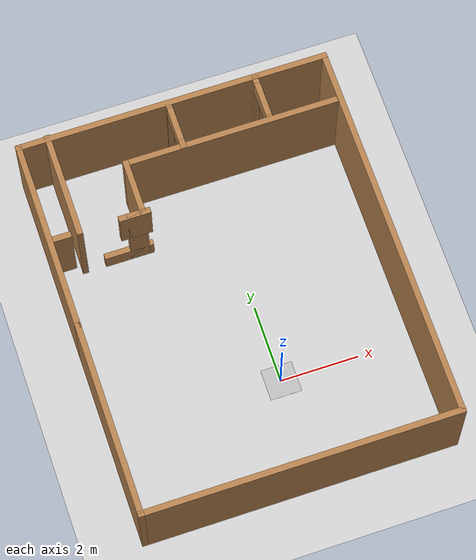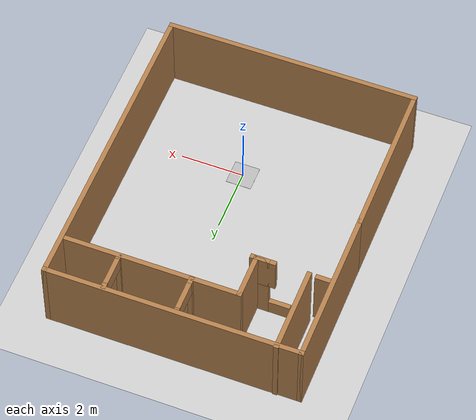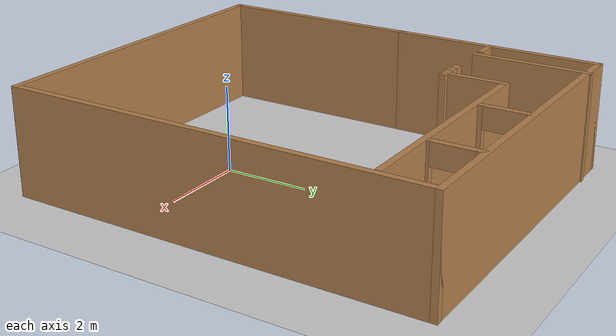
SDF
<sdf version="1.7">
 <world name="default">
  <light name="sun" type="directional">
   <pose>0 0 10 0 -0 0</pose>
   <diffuse>0.8 0.8 0.8 1</diffuse>
   <specular>0.2 0.2 0.2 1</specular>
   <attenuation>
    <range>1000</range>
    <constant>0.9</constant>
    <linear>0.01</linear>
    <quadratic>0.001</quadratic>
   </attenuation>
   <direction>-0.5 0.1 -0.9</direction>
   <spot><inner_angle>0</inner_angle><outer_angle>0</outer_angle><falloff>0</falloff></spot>
  </light>
  <model name="ground_plane">
   <static>1</static>
   <link name="link">
    <collision name="collision">
     <geometry><plane><normal>0 0 1</normal><size>100 100</size></plane></geometry>
     <surface>
      <contact><collide_bitmask>65535</collide_bitmask></contact>
      <friction><ode><mu>100</mu><mu2>50</mu2></ode></friction>
     </surface>
    </collision>
    <visual name="visual">
     <cast_shadows>0</cast_shadows>
     <geometry><plane><normal>0 0 1</normal><size>100 100</size></plane></geometry>
     <material>
      <script><uri>file://media/materials/scripts/gazebo.material</uri><name>Gazebo/Grey</name></script>
     </material>
     <receive_shadows>1</receive_shadows>
     <render_order>0</render_order>
    </visual>
   </link>
  </model>
  <gravity>0 0 -9.8</gravity>
  <magnetic_field>6e-06 2.3e-05 -4.2e-05</magnetic_field>
  <atmosphere type="adiabatic"/>
  <physics type="ode">
   <max_step_size>0.001</max_step_size>
   <real_time_factor>1</real_time_factor>
   <real_time_update_rate>1000</real_time_update_rate>
  </physics>
  <scene>
   <ambient>0.4 0.4 0.4 1</ambient>
   <background>0.7 0.7 0.7 1</background>
   <shadows>1</shadows>
   <fog><type>none</type></fog>
  </scene>
  <spherical_coordinates>
   <surface_model>EARTH_WGS84</surface_model>
   <latitude_deg>0</latitude_deg>
   <longitude_deg>0</longitude_deg>
   <elevation>0</elevation>
   <heading_deg>0</heading_deg>
  </spherical_coordinates>
  <model name="toudi2">
   <pose>-0.485 2.03479 0 0 -0 0</pose>
   <link name="Wall_1">
    <collision name="Wall_1_Collision">
     <geometry><box><size>8 0.15 2.5</size></box></geometry>
     <pose>0 0 1.25 0 -0 0</pose>
    </collision>
    <visual name="Wall_1_Visual">
     <pose>0 0 1.25 0 -0 0</pose>
     <geometry><box><size>8 0.15 2.5</size></box></geometry>
     <material>
      <script><uri>file://media/materials/scripts/gazebo.material</uri><name>Gazebo/Wood</name></script>
      <ambient>1 1 1 1</ambient>
     </material>
     <receive_shadows>1</receive_shadows>
     <render_order>1</render_order>
     <meta><layer>0</layer></meta>
    </visual>
    <pose>-0 -4.86479 0 0 -0 3.14159</pose>
   </link>
   <link name="Wall_11">
    <collision name="Wall_11_Collision">
     <geometry><box><size>9.85 0.15 2.5</size></box></geometry>
     <pose>0 0 1.25 0 -0 0</pose>
    </collision>
    <visual name="Wall_11_Visual">
     <pose>0 0 1.25 0 -0 0</pose>
     <geometry><box><size>9.85 0.15 2.5</size></box></geometry>
     <material>
      <script><uri>file://media/materials/scripts/gazebo.material</uri><name>Gazebo/Wood</name></script>
      <ambient>1 1 1 1</ambient>
     </material>
     <receive_shadows>1</receive_shadows>
     <render_order>1</render_order>
     <meta><layer>0</layer></meta>
    </visual>
    <pose>3.925 -0.01479 0 0 -0 1.5708</pose>
   </link>
   <link name="Wall_13">
    <collision name="Wall_13_Collision">
     <geometry><box><size>5.5 0.15 2.5</size></box></geometry>
     <pose>0 0 1.25 0 -0 0</pose>
    </collision>
    <visual name="Wall_13_Visual">
     <pose>0 0 1.25 0 -0 0</pose>
     <geometry><box><size>5.5 0.15 2.5</size></box></geometry>
     <material>
      <script><uri>file://media/materials/scripts/gazebo.material</uri><name>Gazebo/Wood</name></script>
      <ambient>1 1 1 1</ambient>
     </material>
     <receive_shadows>1</receive_shadows>
     <render_order>1</render_order>
     <meta><layer>0</layer></meta>
    </visual>
    <pose>1.09114 3.61479 0 0 -0 3.14159</pose>
   </link>
   <link name="Wall_14">
    <collision name="Wall_14_Collision">
     <geometry><box><size>1.5 0.15 2.5</size></box></geometry>
     <pose>0 0 1.25 0 -0 0</pose>
    </collision>
    <visual name="Wall_14_Visual">
     <pose>0 0 1.25 0 -0 0</pose>
     <geometry><box><size>1.5 0.15 2.5</size></box></geometry>
     <material>
      <script><uri>file://media/materials/scripts/gazebo.material</uri><name>Gazebo/Wood</name></script>
      <ambient>1 1 1 1</ambient>
     </material>
     <receive_shadows>1</receive_shadows>
     <render_order>1</render_order>
     <meta><layer>0</layer></meta>
    </visual>
    <pose>-1.58386 2.93979 0 0 -0 -1.5708</pose>
   </link>
   <link name="Wall_15">
    <pose>-2.38386 2.26479 0 0 -0 3.14159</pose>
    <visual name="Wall_15_Visual_0">
     <pose>-0.631873 0 1.25 0 -0 0</pose>
     <geometry><box><size>0.486255 0.15 2.5</size></box></geometry>
     <material>
      <script><uri>file://media/materials/scripts/gazebo.material</uri><name>Gazebo/Wood</name></script>
      <ambient>1 1 1 1</ambient>
     </material>
     <receive_shadows>1</receive_shadows>
     <render_order>1</render_order>
     <meta><layer>0</layer></meta>
    </visual>
    <collision name="Wall_15_Collision_0">
     <geometry><box><size>0.486255 0.15 2.5</size></box></geometry>
     <pose>-0.631873 0 1.25 0 -0 0</pose>
    </collision>
    <visual name="Wall_15_Visual_1">
     <pose>-0.356873 0 0.25 0 -0 0</pose>
     <geometry><box><size>1.26374 0.15 0.5</size></box></geometry>
     <material>
      <script><uri>file://media/materials/scripts/gazebo.material</uri><name>Gazebo/Wood</name></script>
      <ambient>1 1 1 1</ambient>
     </material>
     <receive_shadows>1</receive_shadows>
     <render_order>1</render_order>
     <meta><layer>0</layer></meta>
    </visual>
    <collision name="Wall_15_Collision_1">
     <geometry><box><size>1.26374 0.15 0.5</size></box></geometry>
     <pose>-0.356873 0 0.25 0 -0 0</pose>
    </collision>
    <visual name="Wall_15_Visual_2">
     <pose>1.234 0 1.5 0 -0 0</pose>
     <geometry><box><size>0.463745 0.15 2</size></box></geometry>
     <material>
      <script><uri>file://media/materials/scripts/gazebo.material</uri><name>Gazebo/Wood</name></script>
      <ambient>1 1 1 1</ambient>
     </material>
     <receive_shadows>1</receive_shadows>
     <render_order>1</render_order>
     <meta><layer>0</layer></meta>
    </visual>
    <collision name="Wall_15_Collision_2">
     <geometry><box><size>0.463745 0.15 2</size></box></geometry>
     <pose>1.234 0 1.5 0 -0 0</pose>
    </collision>
    <visual name="Wall_15_Visual_3">
     <pose>-0.588745 0 1.9 0 -0 0</pose>
     <geometry><box><size>0.8 0.15 1.2</size></box></geometry>
     <material>
      <script><uri>file://media/materials/scripts/gazebo.material</uri><name>Gazebo/Wood</name></script>
      <ambient>1 1 1 1</ambient>
     </material>
     <receive_shadows>1</receive_shadows>
     <render_order>1</render_order>
     <meta><layer>0</layer></meta>
    </visual>
    <collision name="Wall_15_Collision_3">
     <geometry><box><size>0.8 0.15 1.2</size></box></geometry>
     <pose>-0.588745 0 1.9 0 -0 0</pose>
    </collision>
   </link>
   <link name="Wall_16">
    <collision name="Wall_16_Collision">
     <geometry><box><size>2.75 0.15 2.5</size></box></geometry>
     <pose>0 0 1.25 0 -0 0</pose>
    </collision>
    <visual name="Wall_16_Visual">
     <pose>0 0 1.25 0 -0 0</pose>
     <geometry><box><size>2.75 0.15 2.5</size></box></geometry>
     <material>
      <script><uri>file://media/materials/scripts/gazebo.material</uri><name>Gazebo/Wood</name></script>
      <ambient>1 1 1 1</ambient>
     </material>
     <receive_shadows>1</receive_shadows>
     <render_order>1</render_order>
     <meta><layer>0</layer></meta>
    </visual>
    <pose>-3.18386 3.56479 0 0 -0 1.5708</pose>
   </link>
   <link name="Wall_20">
    <pose>-0.120415 4.18727 0 0 -0 1.5708</pose>
    <visual name="Wall_20_Visual_0">
     <pose>-0.508309 0 1.25 0 -0 0</pose>
     <geometry><box><size>0.233383 0.15 2.5</size></box></geometry>
     <material>
      <script><uri>file://media/materials/scripts/gazebo.material</uri><name>Gazebo/Wood</name></script>
      <ambient>1 1 1 1</ambient>
     </material>
     <receive_shadows>1</receive_shadows>
     <render_order>1</render_order>
     <meta><layer>0</layer></meta>
    </visual>
    <collision name="Wall_20_Collision_0">
     <geometry><box><size>0.233383 0.15 2.5</size></box></geometry>
     <pose>-0.508309 0 1.25 0 -0 0</pose>
    </collision>
    <visual name="Wall_20_Visual_1">
     <pose>0.566691 0 1.25 0 -0 0</pose>
     <geometry><box><size>0.116617 0.15 2.5</size></box></geometry>
     <material>
      <script><uri>file://media/materials/scripts/gazebo.material</uri><name>Gazebo/Wood</name></script>
      <ambient>1 1 1 1</ambient>
     </material>
     <receive_shadows>1</receive_shadows>
     <render_order>1</render_order>
     <meta><layer>0</layer></meta>
    </visual>
    <collision name="Wall_20_Collision_1">
     <geometry><box><size>0.116617 0.15 2.5</size></box></geometry>
     <pose>0.566691 0 1.25 0 -0 0</pose>
    </collision>
    <visual name="Wall_20_Visual_2">
     <pose>0.058383 0 2.25 0 -0 0</pose>
     <geometry><box><size>0.9 0.15 0.5</size></box></geometry>
     <material>
      <script><uri>file://media/materials/scripts/gazebo.material</uri><name>Gazebo/Wood</name></script>
      <ambient>1 1 1 1</ambient>
     </material>
     <receive_shadows>1</receive_shadows>
     <render_order>1</render_order>
     <meta><layer>0</layer></meta>
    </visual>
    <collision name="Wall_20_Collision_2">
     <geometry><box><size>0.9 0.15 0.5</size></box></geometry>
     <pose>0.058383 0 2.25 0 -0 0</pose>
    </collision>
   </link>
   <link name="Wall_22">
    <pose>2.11461 4.22694 0 0 -0 1.5708</pose>
    <visual name="Wall_22_Visual_0">
     <pose>-0.549885 0 1.25 0 -0 0</pose>
     <geometry><box><size>0.15023 0.15 2.5</size></box></geometry>
     <material>
      <script><uri>file://media/materials/scripts/gazebo.material</uri><name>Gazebo/Wood</name></script>
      <ambient>1 1 1 1</ambient>
     </material>
     <receive_shadows>1</receive_shadows>
     <render_order>1</render_order>
     <meta><layer>0</layer></meta>
    </visual>
    <collision name="Wall_22_Collision_0">
     <geometry><box><size>0.15023 0.15 2.5</size></box></geometry>
     <pose>-0.549885 0 1.25 0 -0 0</pose>
    </collision>
    <visual name="Wall_22_Visual_1">
     <pose>0.525115 0 1.25 0 -0 0</pose>
     <geometry><box><size>0.19977 0.15 2.5</size></box></geometry>
     <material>
      <script><uri>file://media/materials/scripts/gazebo.material</uri><name>Gazebo/Wood</name></script>
      <ambient>1 1 1 1</ambient>
     </material>
     <receive_shadows>1</receive_shadows>
     <render_order>1</render_order>
     <meta><layer>0</layer></meta>
    </visual>
    <collision name="Wall_22_Collision_1">
     <geometry><box><size>0.19977 0.15 2.5</size></box></geometry>
     <pose>0.525115 0 1.25 0 -0 0</pose>
    </collision>
    <visual name="Wall_22_Visual_2">
     <pose>-0.02477 0 2.25 0 -0 0</pose>
     <geometry><box><size>0.9 0.15 0.5</size></box></geometry>
     <material>
      <script><uri>file://media/materials/scripts/gazebo.material</uri><name>Gazebo/Wood</name></script>
      <ambient>1 1 1 1</ambient>
     </material>
     <receive_shadows>1</receive_shadows>
     <render_order>1</render_order>
     <meta><layer>0</layer></meta>
    </visual>
    <collision name="Wall_22_Collision_2">
     <geometry><box><size>0.9 0.15 0.5</size></box></geometry>
     <pose>-0.02477 0 2.25 0 -0 0</pose>
    </collision>
   </link>
   <link name="Wall_4">
    <collision name="Wall_4_Collision">
     <geometry><box><size>5 0.15 2.5</size></box></geometry>
     <pose>0 0 1.25 0 -0 0</pose>
    </collision>
    <visual name="Wall_4_Visual">
     <pose>0 0 1.25 0 -0 0</pose>
     <geometry><box><size>5 0.15 2.5</size></box></geometry>
     <material>
      <script><uri>file://media/materials/scripts/gazebo.material</uri><name>Gazebo/Wood</name></script>
      <ambient>1 1 1 1</ambient>
     </material>
     <receive_shadows>1</receive_shadows>
     <render_order>1</render_order>
     <meta><layer>0</layer></meta>
    </visual>
    <pose>-3.925 -2.43979 0 0 -0 1.5708</pose>
   </link>
   <link name="Wall_6">
    <collision name="Wall_6_Collision">
     <geometry><box><size>5 0.15 2.5</size></box></geometry>
     <pose>0 0 1.25 0 -0 0</pose>
    </collision>
    <visual name="Wall_6_Visual">
     <pose>0 0 1.25 0 -0 0</pose>
     <geometry><box><size>5 0.15 2.5</size></box></geometry>
     <material>
      <script><uri>file://media/materials/scripts/gazebo.material</uri><name>Gazebo/Wood</name></script>
      <ambient>1 1 1 1</ambient>
     </material>
     <receive_shadows>1</receive_shadows>
     <render_order>1</render_order>
     <meta><layer>0</layer></meta>
    </visual>
    <pose>-3.925 2.41021 0 0 -0 1.5708</pose>
   </link>
   <link name="Wall_9">
    <collision name="Wall_9_Collision">
     <geometry><box><size>8 0.15 2.5</size></box></geometry>
     <pose>0 0 1.25 0 -0 0</pose>
    </collision>
    <visual name="Wall_9_Visual">
     <pose>0 0 1.25 0 -0 0</pose>
     <geometry><box><size>8 0.15 2.5</size></box></geometry>
     <material>
      <script><uri>file://media/materials/scripts/gazebo.material</uri><name>Gazebo/Wood</name></script>
      <ambient>1 1 1 1</ambient>
     </material>
     <receive_shadows>1</receive_shadows>
     <render_order>1</render_order>
     <meta><layer>0</layer></meta>
    </visual>
    <pose>-0 4.83521 0 0 -0 0</pose>
   </link>
   <static>1</static>
  </model>
  <include><uri>model://landing_h</uri><name>landing_h</name></include>
 </world>
</sdf>

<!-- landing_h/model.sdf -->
<sdf version="1.7">
  <model name="landing_h">
    <static>true</static>
    <link name="link">
      <pose>0 0 0.0025 0 0 0</pose>
      <collision name="collision">
        <geometry>
          <box><size>0.8 0.8 0.005</size></box>
        </geometry>
      </collision>
      <visual name="visual">
        <geometry>
          <box><size>0.8 0.8 0.005</size></box>
        </geometry>
        <material>
          <script>
            <uri>model://landing_h/materials/scripts/</uri>
            <uri>model://landing_h/materials/textures/</uri>
            <name>Mark/LandingH</name>
          </script>
        </material>
        <cast_shadows>true</cast_shadows>
        <receive_shadows>true</receive_shadows>
      </visual>
    </link>
  </model>
</sdf>
